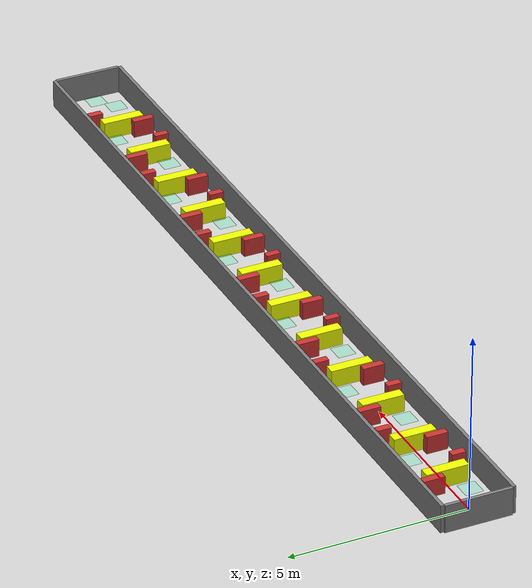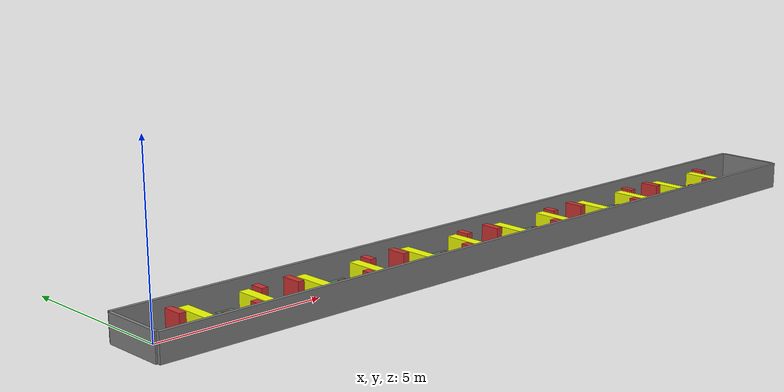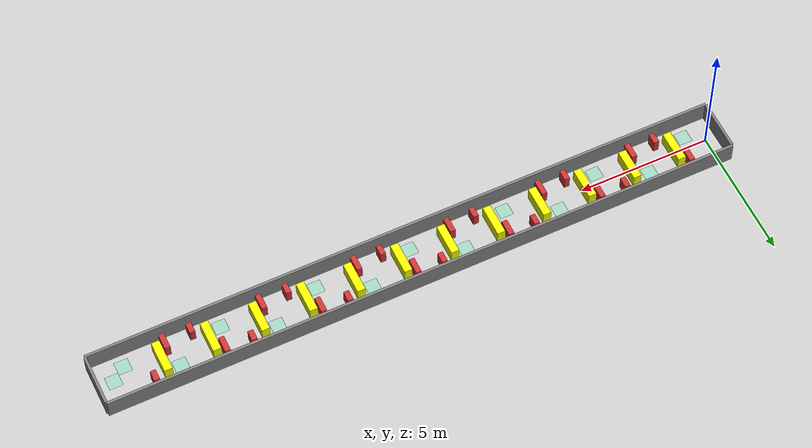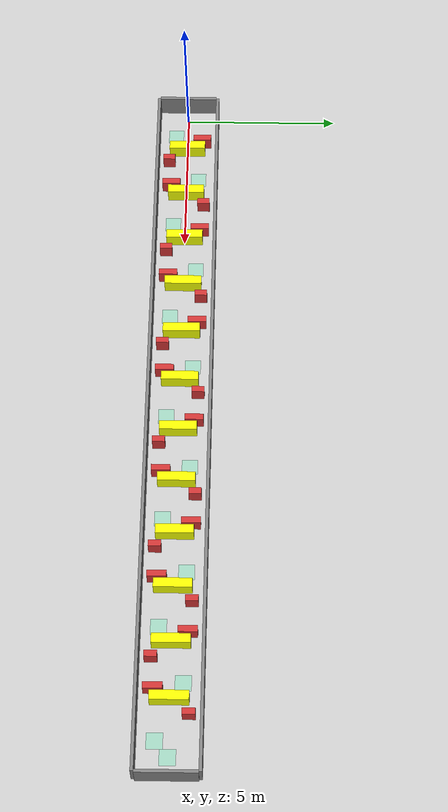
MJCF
<mujoco>
  <option timestep="0.01" integrator="RK4" />

  <worldbody>

    <!--  12 sets -->

    <!-- set 1 -->
    <body name="wall_1" pos="1.0 0.5 0.25">
      <geom name="wall_1" type="box" size="0.1 0.3 0.25" mass=".1" material="static" condim="4" />
    </body>
    <body name="wall_2" pos="1.8 -0.6 .25">
      <geom name="wall_2" type="box" size="0.1 0.2 0.25" mass=".1" material="static" condim="4" />
    </body>
    <body name="movable_cube1" pos="1.3 0 .25" euler="0 0 0">
      <freejoint />
      <geom name="movable_cube1" type="box" size="0.15 0.6 0.25" mass=".1" material="movable"
        condim="4" />
    </body>

    <!-- set 2 -->
    <body name="wall_3" pos="2.8 -0.5 0.25">
      <geom name="wall_3" type="box" size="0.1 0.3 0.25" mass=".1" material="static" condim="4" />
    </body>
    <body name="wall_4" pos="3.6 0.6 .25">
      <geom name="wall_4" type="box" size="0.1 0.2 0.25" mass=".1" material="static" condim="4" />
    </body>
    <body name="movable_cube2" pos="3.1 0 .25" euler="0 0 0">
      <freejoint />
      <geom name="movable_cube2" type="box" size="0.15 0.6 0.25" mass=".1" material="movable"
        condim="4" />
    </body>

    <!-- set 3 -->
    <body name="wall_5" pos="4.6 0.5 .25">
      <geom name="wall_5" type="box" size="0.1 0.3 0.25" mass=".1" material="static" condim="4" />
    </body>
    <body name="wall_6" pos="5.4 -0.6 0.25">
      <geom name="wall_6" type="box" size="0.1 0.2 0.25" mass=".1" material="static" condim="4" />
    </body>
    <body name="movable_cube3" pos="4.9 0 .25" euler="0 0 0">
      <freejoint />
      <geom name="movable_cube3" type="box" size="0.15 0.6 0.25" mass=".1" material="movable"
        condim="4" />
    </body>

    <!-- set 4 -->
    <body name="wall_7" pos="6.4 -0.5 0.25">
      <geom name="wall_7" type="box" size="0.1 0.3 0.25" mass=".1" material="static" condim="4" />
    </body>
    <body name="wall_8" pos="7.2 0.6 .25">
      <geom name="wall_8" type="box" size="0.1 0.2 0.25" mass=".1" material="static" condim="4" />
    </body>
    <body name="movable_cube4" pos="6.7 0 .25" euler="0 0 0">
      <freejoint />
      <geom name="movable_cube4" type="box" size="0.15 0.6 0.25" mass=".1" material="movable"
        condim="4" />
    </body>

    <!-- set 5 -->
    <body name="wall_9" pos="8.2 0.5 .25">
      <geom name="wall_9" type="box" size="0.1 0.3 0.25" mass=".1" material="static" condim="4" />
    </body>
    <body name="wall_10" pos="9.0 -0.6 0.25">
      <geom name="wall_10" type="box" size="0.1 0.2 0.25" mass=".1" material="static" condim="4" />
    </body>
    <body name="movable_cube5" pos="8.5 0 .25" euler="0 0 0">
      <freejoint />
      <geom name="movable_cube5" type="box" size="0.15 0.6 0.25" mass=".1" material="movable"
        condim="4" />
    </body>

    <!-- set 6 -->
    <body name="wall_11" pos="10.0 -0.5 0.25">
      <geom name="wall_11" type="box" size="0.1 0.3 0.25" mass=".1" material="static" condim="4" />
    </body>
    <body name="wall_12" pos="10.8 0.6 .25">
      <geom name="wall_12" type="box" size="0.1 0.2 0.25" mass=".1" material="static" condim="4" />
    </body>
    <body name="movable_cube6" pos="10.3 0 .25" euler="0 0 0">
      <freejoint />
      <geom name="movable_cube6" type="box" size="0.15 0.6 0.25" mass=".1" material="movable"
        condim="4" />
    </body>

    <!-- set 7 -->
    <body name="wall_13" pos="11.8 0.5 0.25">
      <geom name="wall_13" type="box" size="0.1 0.3 0.25" mass=".1" material="static" condim="4" />
    </body>
    <body name="wall_14" pos="12.6 -0.6 0.25">
      <geom name="wall_14" type="box" size="0.1 0.2 0.25" mass=".1" material="static" condim="4" />
    </body>
    <body name="movable_cube7" pos="12.1 0 .25" euler="0 0 0">
      <freejoint />
      <geom name="movable_cube7" type="box" size="0.15 0.6 0.25" mass=".1" material="movable"
        condim="4" />
    </body>

    <!-- set 8 -->
    <body name="wall_15" pos="13.6 -0.5 0.25">
      <geom name="wall_15" type="box" size="0.1 0.3 0.25" mass=".1" material="static" condim="4" />
    </body>
    <body name="wall_16" pos="14.4 0.6 0.25">
      <geom name="wall_16" type="box" size="0.1 0.2 0.25" mass=".1" material="static" condim="4" />
    </body>
    <body name="movable_cube8" pos="13.9 0 .25" euler="0 0 0">
      <freejoint />
      <geom name="movable_cube8" type="box" size="0.15 0.6 0.25" mass=".1" material="movable"
        condim="4" />
    </body>

    <!-- set 9 -->
    <body name="wall_17" pos="15.4 0.5 0.25">
      <geom name="wall_17" type="box" size="0.1 0.3 0.25" mass=".1" material="static" condim="4" />
    </body>
    <body name="wall_18" pos="16.2 -0.6 0.25">
      <geom name="wall_18" type="box" size="0.1 0.2 0.25" mass=".1" material="static" condim="4" />
    </body>
    <body name="movable_cube9" pos="15.7 0 .25" euler="0 0 0">
      <freejoint />
      <geom name="movable_cube9" type="box" size="0.15 0.6 0.25" mass=".1" material="movable"
        condim="4" />
    </body>

    <!-- set 10 -->
    <body name="wall_19" pos="17.2 -0.5 0.25">
      <geom name="wall_19" type="box" size="0.1 0.3 0.25" mass=".1" material="static" condim="4" />
    </body>
    <body name="wall_20" pos="18.0 0.6 0.25">
      <geom name="wall_20" type="box" size="0.1 0.2 0.25" mass=".1" material="static" condim="4" />
    </body>
    <body name="movable_cube10" pos="17.5 0 .25" euler="0 0 0">
      <freejoint />
      <geom name="movable_cube10" type="box" size="0.15 0.6 0.25" mass=".1" material="movable"
        condim="4" />
    </body>

    <!-- set 11 -->
    <body name="wall_21" pos="19.0 0.5 0.25">
      <geom name="wall_21" type="box" size="0.1 0.3 0.25" mass=".1" material="static" condim="4" />
    </body>
    <body name="wall_22" pos="19.8 -0.6 0.25">
      <geom name="wall_22" type="box" size="0.1 0.2 0.25" mass=".1" material="static" condim="4" />
    </body>
    <body name="movable_cube11" pos="19.3 0 .25" euler="0 0 0">
      <freejoint />
      <geom name="movable_cube11" type="box" size="0.15 0.6 0.25" mass=".1" material="movable"
        condim="4" />
    </body>

    <!-- set 12 -->
    <body name="wall_23" pos="20.8 -0.5 0.25">
      <geom name="wall_23" type="box" size="0.1 0.3 0.25" mass=".1" material="static" condim="4" />
    </body>
    <body name="wall_24" pos="21.6 0.6 0.25">
      <geom name="wall_24" type="box" size="0.1 0.2 0.25" mass=".1" material="static" condim="4" />
    </body>
    <body name="movable_cube12" pos="21.1 0 .25" euler="0 0 0">
      <freejoint />
      <geom name="movable_cube12" type="box" size="0.15 0.6 0.25" mass=".1" material="movable"
        condim="4" />
    </body>

    <body name="case" pos="0 0 0.1">
      <geom name="gcase_a" type="box" size="0.05 0.95 0.4" pos="-0.5 0 0.2" />
      <geom name="gcase_b" type="box" size="0.05 0.95 0.4" pos="23.5 0 0.2" />
      <geom name="gcase_c" type="box" size="12 0.05 0.4" pos="11.5 1 0.2" />
      <geom name="gcase_d" type="box" size="12 0.05 0.4" pos="11.5 -1 0.2" />
    </body>

    <site name="target1" type="box" pos="0.7 -0.4 0.1" size="0.25 0.25" rgba="0 1 0.6 0.2" />
    <site name="target2" type="box" pos="2.5 0.4 0.1" size="0.25 0.25" rgba="0 1 0.6 0.2" />
    <site name="target3" type="box" pos="4.3 -0.4 0.1" size="0.25 0.25" rgba="0 1 0.6 0.2" />
    <site name="target4" type="box" pos="6.1 0.4 0.1" size="0.25 0.25" rgba="0 1 0.6 0.2" />
    <site name="target5" type="box" pos="7.9 -0.4 0.1" size="0.25 0.25" rgba="0 1 0.6 0.2" />
    <site name="target6" type="box" pos="9.8 0.4 0.1" size="0.25 0.25" rgba="0 1 0.6 0.2" />
    <site name="target7" type="box" pos="11.6 -0.4 0.1" size="0.25 0.25" rgba="0 1 0.6 0.2" />
    <site name="target8" type="box" pos="13.4 0.4 0.1" size="0.25 0.25" rgba="0 1 0.6 0.2" />
    <site name="target9" type="box" pos="15.2 -0.4 0.1" size="0.25 0.25" rgba="0 1 0.6 0.2" />
    <site name="target10" type="box" pos="17.0 0.4 0.1" size="0.25 0.25" rgba="0 1 0.6 0.2" />
    <site name="target11" type="box" pos="18.8 -0.4 0.1" size="0.25 0.25" rgba="0 1 0.6 0.2" />
    <site name="target12" type="box" pos="20.6 0.4 0.1" size="0.25 0.25" rgba="0 1 0.6 0.2" />
    <site name="target13" type="box" pos="22.4 -0.4 0.1" size="0.25 0.25" rgba="0 1 0.6 0.2" />
    <site name="target14" type="box" pos="22.9 0.0 0.1" size="0.25 0.25" rgba="0 1 0.6 0.2" />

  </worldbody>

  <asset>
    <!-- Materials for visualization -->
    <material name="movable" rgba="0.94 1.0 0.0 1" />
    <material name="static" rgba="0.8 0.2 0.2 1" />

  </asset>

</mujoco>
